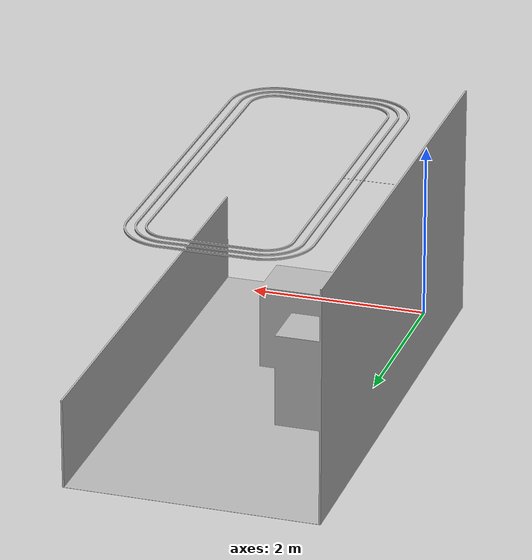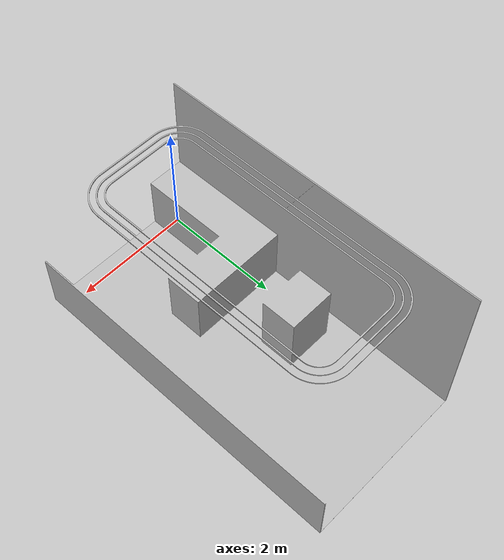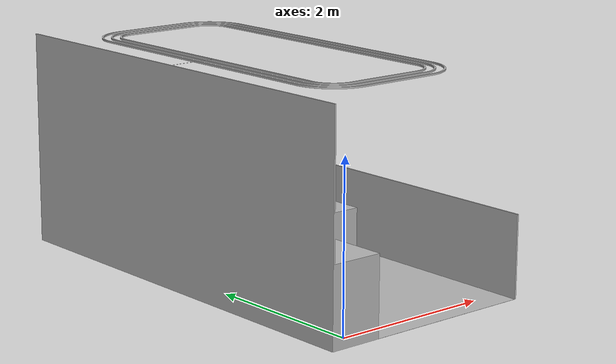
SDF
<?xml version="1.0"?>
<sdf version="1.6">
  <model name="kitchen">
    <static>true</static>
    <link name="link">
      <visual name="visual">
        <geometry>
          <mesh>
            <uri>model://kitchen/meshes/kitchen.obj</uri>
            <scale>1 1 1</scale>
          </mesh>
        </geometry>
      </visual>
      <collision name="collision">
        <geometry>
          <mesh>
            <uri>model://kitchen/meshes/kitchen.obj</uri>
            <scale>1 1 1</scale>
          </mesh>
        </geometry>
        <surface>
          <friction>
            <ode><mu>0.8</mu><mu2>0.8</mu2></ode>
          </friction>
          <contact>
            <ode>
              <kp>1e6</kp><kd>100</kd>
              <max_vel>0.01</max_vel><min_depth>0.001</min_depth>
            </ode>
          </contact>
        </surface>
      </collision>
    </link>
  </model>
</sdf>
